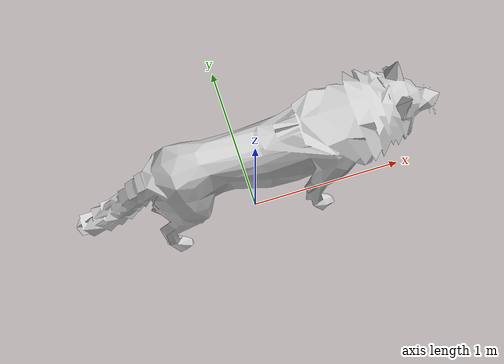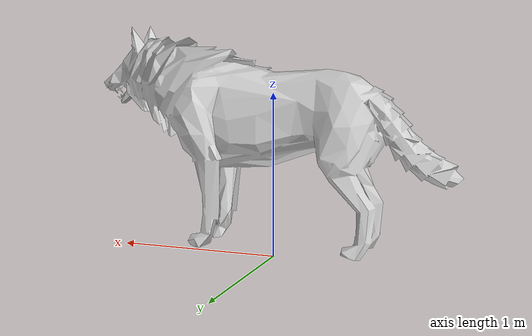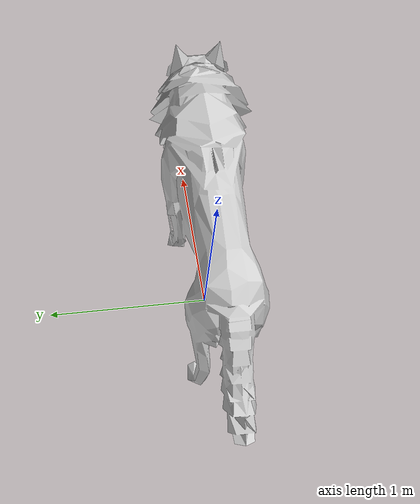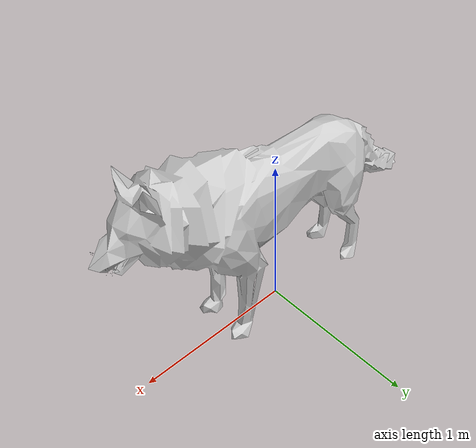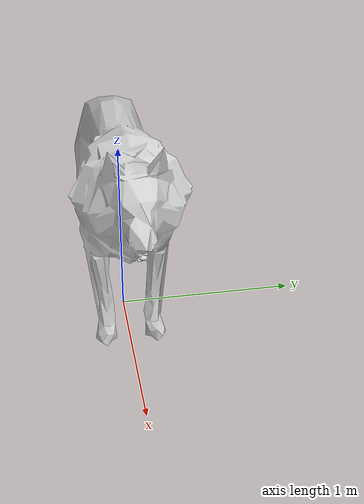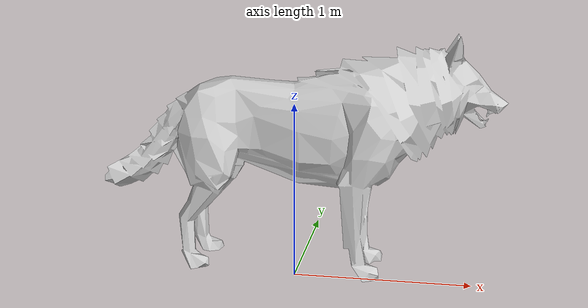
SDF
<?xml version="1.0"?>
<sdf version="1.4">
  <model name="wolf_tdf">
    <static>true</static>
    <link name="body">
      <collision name="collision">
        <geometry>
          <mesh>
            <uri>model://wolf_tdf/meshes/wolf.dae</uri>
          </mesh>
        </geometry>
      </collision>
      <visual name="visual">
        <geometry>
          <mesh><uri>model://wolf_tdf/meshes/wolf.dae</uri></mesh>
        </geometry>
      </visual>
    </link>
  </model>
</sdf>
